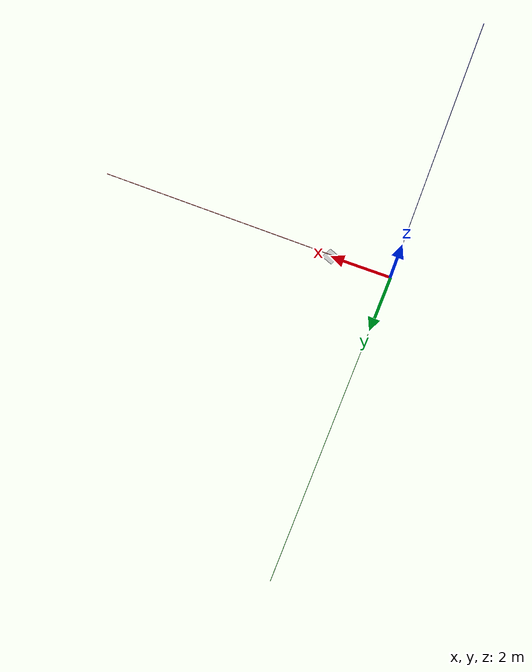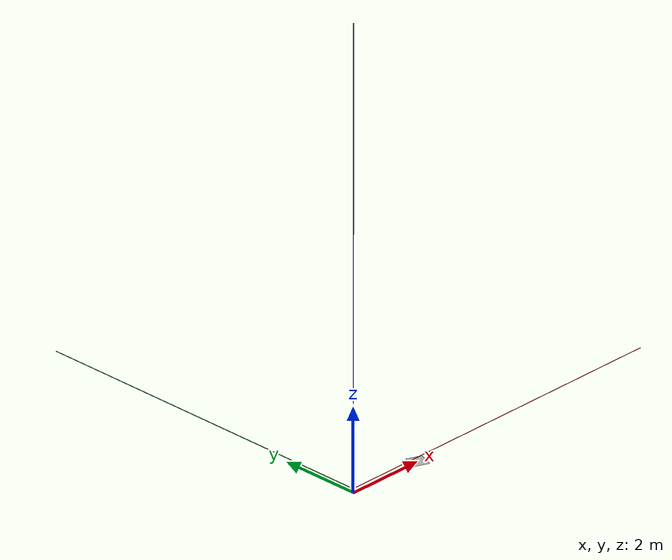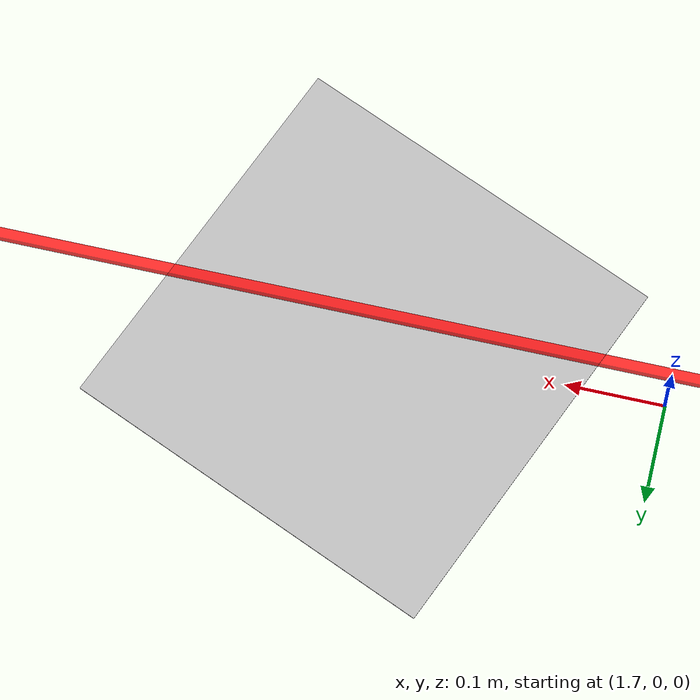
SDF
<sdf version="1.9">
 <world name="iris_runway">
  <physics name="1ms" type="ignore">
   <max_step_size>0.001</max_step_size>
   <real_time_factor>1.0</real_time_factor>
  </physics>
  <plugin filename="gz-sim-physics-system" name="gz::sim::systems::Physics"/>
  <plugin filename="gz-sim-sensors-system" name="gz::sim::systems::Sensors">
   <render_engine>ogre2</render_engine>
  </plugin>
  <plugin filename="gz-sim-user-commands-system" name="gz::sim::systems::UserCommands"/>
  <plugin filename="gz-sim-scene-broadcaster-system" name="gz::sim::systems::SceneBroadcaster"/>
  <plugin filename="gz-sim-imu-system" name="gz::sim::systems::Imu"/>
  <plugin filename="gz-sim-navsat-system" name="gz::sim::systems::NavSat"/>
  <scene><ambient>1.0 1.0 1.0</ambient><background>0.8 0.8 0.8</background></scene>
  <spherical_coordinates>
   <latitude_deg>-35.363262</latitude_deg>
   <longitude_deg>149.165237</longitude_deg>
   <elevation>584</elevation>
   <heading_deg>0</heading_deg>
   <surface_model>EARTH_WGS84</surface_model>
  </spherical_coordinates>
  <light type="directional" name="sun">
   <pose>0 0 10 0 0 0</pose>
   <diffuse>0.8 0.8 0.8 1</diffuse>
   <specular>0.8 0.8 0.8 1</specular>
   <attenuation>
    <range>1000</range>
    <constant>0.9</constant>
    <linear>0.01</linear>
    <quadratic>0.001</quadratic>
   </attenuation>
   <direction>-0.5 0.1 -0.9</direction>
  </light>
  <model name="axes">
   <static>1</static>
   <link name="link">
    <visual name="r">
     <cast_shadows>0</cast_shadows>
     <pose>5 0 0.1 0 0 0</pose>
     <geometry><box><size>10 0.01 0.01</size></box></geometry>
     <material>
      <ambient>1 0 0 0.8</ambient>
      <diffuse>1 0 0 0.8</diffuse>
      <emissive>1 0 0 0.8</emissive>
      <specular>0.5 0.5 0.5 0.8</specular>
     </material>
    </visual>
    <visual name="g">
     <cast_shadows>0</cast_shadows>
     <pose>0 5 0.1 0 0 0</pose>
     <geometry><box><size>0.01 10 0.01</size></box></geometry>
     <material>
      <ambient>0 1 0 0.8</ambient>
      <diffuse>0 1 0 0.8</diffuse>
      <emissive>0 1 0 0.8</emissive>
      <specular>0.5 0.5 0.5 0.8</specular>
     </material>
    </visual>
    <visual name="b">
     <cast_shadows>0</cast_shadows>
     <pose>0 0 5.1 0 0 0</pose>
     <geometry><box><size>0.01 0.01 10</size></box></geometry>
     <material>
      <ambient>0 0 1 0.8</ambient>
      <diffuse>0 0 1 0.8</diffuse>
      <emissive>0 0 1 0.8</emissive>
      <specular>0.5 0.5 0.5 0.8</specular>
     </material>
    </visual>
    <sensor name="navsat_sensor" type="navsat"><always_on>1</always_on><update_rate>1</update_rate></sensor>
   </link>
  </model>
  <include><uri>model://landing_tag</uri><pose>2 0 0 0 0 1.1708</pose></include>
 </world>
</sdf>

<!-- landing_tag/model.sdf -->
<sdf version="1.7">
  <model name="landing_tag">
    <static>true</static>

    <link name="link">
      <!-- slightly above z=0 to avoid z-fighting -->
      <pose>0 0 0.001 0 0 0</pose>

      <visual name="tag_visual">
        <pose>0 0 0.0005 0 0 0</pose>
        <geometry>
          <!-- Thin box is more reliable than plane for texturing -->
          <box>
            <size>0.4 0.4 0.001</size>
          </box>
        </geometry>

        <cast_shadows>false</cast_shadows>

        <material>
          <pbr>
            <metal>
              <albedo_map>model://landing_tag/materials/textures/tag36_11_00000_2048.png</albedo_map>

              <!-- Make it visible even if lighting/PBR is weird -->
              <emissive>1 1 1</emissive>
              <emissive_map>model://landing_tag/materials/textures/tag36_11_00000_2048.png</emissive_map>

              <roughness>1.0</roughness>
              <metalness>0.0</metalness>
            </metal>
          </pbr>
        </material>
      </visual>

      <collision name="collision">
        <geometry>
          <plane>
            <normal>0 0 1</normal>
            <size>0.4 0.4</size>
          </plane>
        </geometry>
      </collision>
    </link>
  </model>
</sdf>
